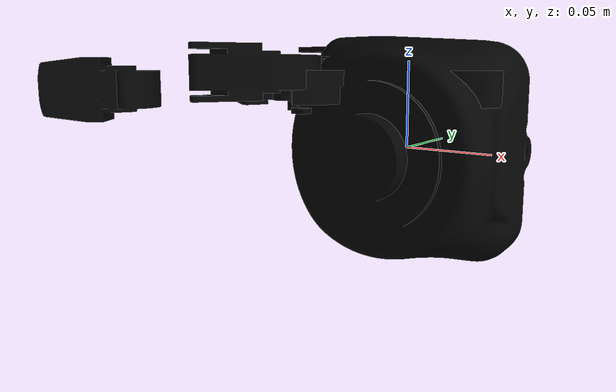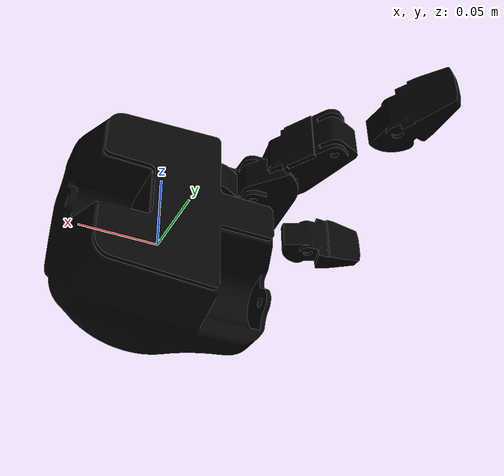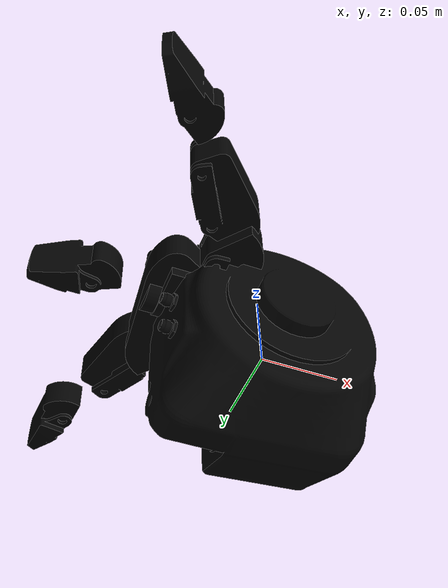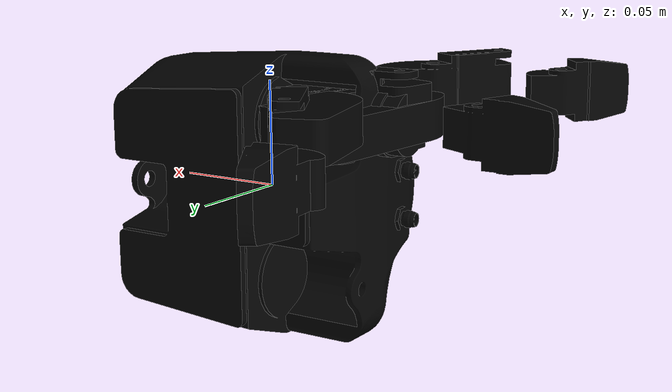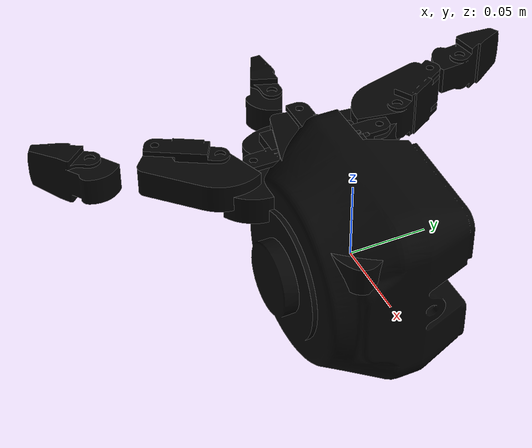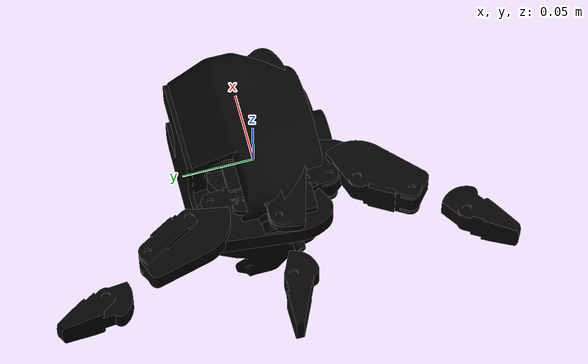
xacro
<?xml version="1.0"?>
<robot name="robotiq_gripper" xmlns:xacro="http://www.ros.org/wiki/xacro">

  <!-- Material Properties -->
  <xacro:property name="palm_color" value="0.75 0.75 0.75 1" />
  <xacro:property name="link0_color" value="0.75 0.75 0.75 1" />
  <xacro:property name="link1_color" value="0.5 0 0 1" />
  <xacro:property name="link2_color" value="0.5 0.5 0.5 1" />
  <xacro:property name="link3_color" value="0 0 0 1" />

  <!-- Link Macro -->
  <xacro:macro name="link" params="name color visual_mesh collision_mesh mass ixx ixy ixz iyy iyz izz">
    <link name="${name}">
      <visual>
        <origin xyz="0 0 0" rpy="0 0 0" />
        <geometry>
          <mesh filename="${visual_mesh}" />
        </geometry>
        <material name="${color}">
        </material>
      </visual>
      <collision>
        <origin xyz="0 0 0" rpy="0 0 0" />
        <geometry>
          <mesh filename="${collision_mesh}" />
        </geometry>
      </collision>
      <inertial>
        <origin xyz="0 0 0" rpy="0 0 0" />
        <mass value="${mass}" />
        <inertia ixx="${ixx}" ixy="${ixy}" ixz="${ixz}" iyy="${iyy}" iyz="${iyz}" izz="${izz}" />
      </inertial>
    </link>
  </xacro:macro>

  <!-- Joint Macro -->
  <xacro:macro name="joint" params="name type parent child axis origin rpy lower upper velocity">
    <joint name="${name}" type="${type}">
      <parent link="${parent}" />
      <child link="${child}" />
      <axis xyz="${axis}" />
      <origin xyz="${origin}" rpy="${rpy}" />
      <limit lower="${lower}" upper="${upper}" velocity="${velocity}" />
    </joint>
  </xacro:macro>

  <!-- Palm Link -->
  <xacro:link name="palm" parent="base_link" color="palm_color" visual_mesh="meshes/visual/palm.dae" collision_mesh="meshes/collision/palm.STL" mass="1.3" ixx="0.006012" ixy="0.000079" ixz="-0.00024" iyy="0.012892" iyz="0" izz="0.002435" />

  <!-- Finger 1 Links -->
  <xacro:link name="finger_1_link_0" color="link0_color" visual_mesh="meshes/visual/link_0.dae" collision_mesh="meshes/collision/link_0.STL" mass="0.05" ixx="0.01" ixy="-0.00002" ixz="0.00001" iyy="0.0008" iyz="0" izz="0.001" />
  <xacro:link name="finger_1_link_1" color="link1_color" visual_mesh="meshes/visual/link_1.dae" collision_mesh="meshes/collision/link_1.STL" mass="0.15" ixx="0.001859" ixy="-0.000376" ixz="0.000028" iyy="0.012756" iyz="0" izz="0.0024" />
  <xacro:link name="finger_1_link_2" color="link2_color" visual_mesh="meshes/visual/link_2.dae" collision_mesh="meshes/collision/link_2.STL" mass="0.15" ixx="0.001859" ixy="-0.000376" ixz="0.000028" iyy="0.012756" iyz="0" izz="0.0024" />
  <xacro:link name="finger_1_link_3" color="link3_color" visual_mesh="meshes/visual/link_3.dae" collision_mesh="meshes/collision/link_3.STL" mass="0.05" ixx="0.001239" ixy="-0.000251" ixz="0.000019" iyy="0.00085" iyz="0" izz="0.001632" />

  <!-- Finger 1 Joints -->
  <xacro:joint name="finger_1_joint_0" type="fixed" parent="palm" child="finger_1_link_0" axis="0 1 0" origin="-0.0455 0.0214 0.036" rpy="0 3.1416 -1.57" lower="0" upper="0" velocity="0" />
  <xacro:joint name="finger_1_joint_1" type="revolute" parent="finger_1_link_0" child="finger_1_link_1" axis="0 0 1" origin="0.020 0 0" rpy="0 0 0" lower="0" upper="1.2211" velocity="10" />
  <xacro:joint name="finger_1_joint_2" type="revolute" parent="finger_1_link_1" child="finger_1_link_2" axis="0 0 1" origin="0.050 -0.028 0" rpy="0 0 -0.52" lower="0" upper="1.350" velocity="100" />
  <xacro:joint name="finger_1_joint_3" type="revolute" parent="finger_1_link_2" child="finger_1_link_3" axis="0 0 1" origin="0.039 0 0" rpy="0 0 0" lower="-0.900" upper="0.75" velocity="100" />

  <!-- Finger 2 Links -->
  <xacro:link name="finger_2_link_0" color="link0_color" visual_mesh="meshes/visual/link_0.dae" collision_mesh="meshes/collision/link_0.STL" mass="0.05" ixx="0.01" ixy="-0.00002" ixz="0.00001" iyy="0.0008" iyz="0" izz="0.001" />
  <xacro:link name="finger_2_link_1" color="link1_color" visual_mesh="meshes/visual/link_1.dae" collision_mesh="meshes/collision/link_1.STL" mass="0.15" ixx="0.001859" ixy="-0.000376" ixz="0.000028" iyy="0.012756" iyz="0" izz="0.0024" />
  <xacro:link name="finger_2_link_2" color="link2_color" visual_mesh="meshes/visual/link_2.dae" collision_mesh="meshes/collision/link_2.STL" mass="0.15" ixx="0.001859" ixy="-0.000376" ixz="0.000028" iyy="0.012756" iyz="0" izz="0.0024" />
  <xacro:link name="finger_2_link_3" color="link3_color" visual_mesh="meshes/visual/link_3.dae" collision_mesh="meshes/collision/link_3.STL" mass="0.05" ixx="0.001239" ixy="-0.000251" ixz="0.000019" iyy="0.00085" iyz="0" izz="0.001632" />

  <!-- Finger 2 Joints -->
  <xacro:joint name="finger_2_joint_0" type="fixed" parent="palm" child="finger_2_link_0" axis="0 1 0" origin="-0.0455 -0.0214 0.036" rpy="0 3.1416 1.57" lower="0" upper="0" velocity="0" />
  <xacro:joint name="finger_2_joint_1" type="revolute" parent="finger_2_link_0" child="finger_2_link_1" axis="0 0 1" origin="0.020 0 0" rpy="0 0 0" lower="0" upper="1.2211" velocity="10" />
  <xacro:joint name="finger_2_joint_2" type="revolute" parent="finger_2_link_1" child="finger_2_link_2" axis="0 0 1" origin="0.050 0.028 0" rpy="0 0 0.52" lower="0" upper="1.350" velocity="100" />
  <xacro:joint name="finger_2_joint_3" type="revolute" parent="finger_2_link_2" child="finger_2_link_3" axis="0 0 1" origin="0.039 0 0" rpy="0 0 0" lower="-0.900" upper="0.75" velocity="100" />

  <!-- Middle Finger Links -->
  <xacro:link name="finger_3_link_0" color="link0_color" visual_mesh="meshes/visual/link_0.dae" collision_mesh="meshes/collision/link_0.STL" mass="0.05" ixx="0.01" ixy="-0.00002" ixz="0.00001" iyy="0.0008" iyz="0" izz="0.001" />
  <xacro:link name="finger_3_link_1" color="link1_color" visual_mesh="meshes/visual/link_1.dae" collision_mesh="meshes/collision/link_1.STL" mass="0.15" ixx="0.001859" ixy="-0.000376" ixz="0.000028" iyy="0.012756" iyz="0" izz="0.0024" />
  <xacro:link name="finger_3_link_2" color="link2_color" visual_mesh="meshes/visual/link_2.dae" collision_mesh="meshes/collision/link_2.STL" mass="0.15" ixx="0.001859" ixy="-0.000376" ixz="0.000028" iyy="0.012756" iyz="0" izz="0.0024" />
  <xacro:link name="finger_3_link_3" color="link3_color" visual_mesh="meshes/visual/link_3.dae" collision_mesh="meshes/collision/link_3.STL" mass="0.05" ixx="0.001239" ixy="-0.000251" ixz="0.000019" iyy="0.00085" iyz="0" izz="0.001632" />

  <!-- Middle Finger Joints -->
  <xacro:joint name="finger_3_joint_0" type="fixed" parent="palm" child="finger_3_link_0" axis="0 1 0" origin="0.0 0.0 0.036" rpy="0 3.1416 0" lower="0" upper="0" velocity="0" />
  <xacro:joint name="finger_3_joint_1" type="revolute" parent="finger_3_link_0" child="finger_3_link_1" axis="0 0 1" origin="0.020 0 0" rpy="0 0 0" lower="0" upper="1.2211" velocity="10" />
  <xacro:joint name="finger_3_joint_2" type="revolute" parent="finger_3_link_1" child="finger_3_link_2" axis="0 0 1" origin="0.050 0 0" rpy="0 0 0" lower="0" upper="1.350" velocity="100" />
  <xacro:joint name="finger_3_joint_3" type="revolute" parent="finger_3_link_2" child="finger_3_link_3" axis="0 0 1" origin="0.039 0 0" rpy="0 0 0" lower="-0.900" upper="0.75" velocity="100" />

</robot>
